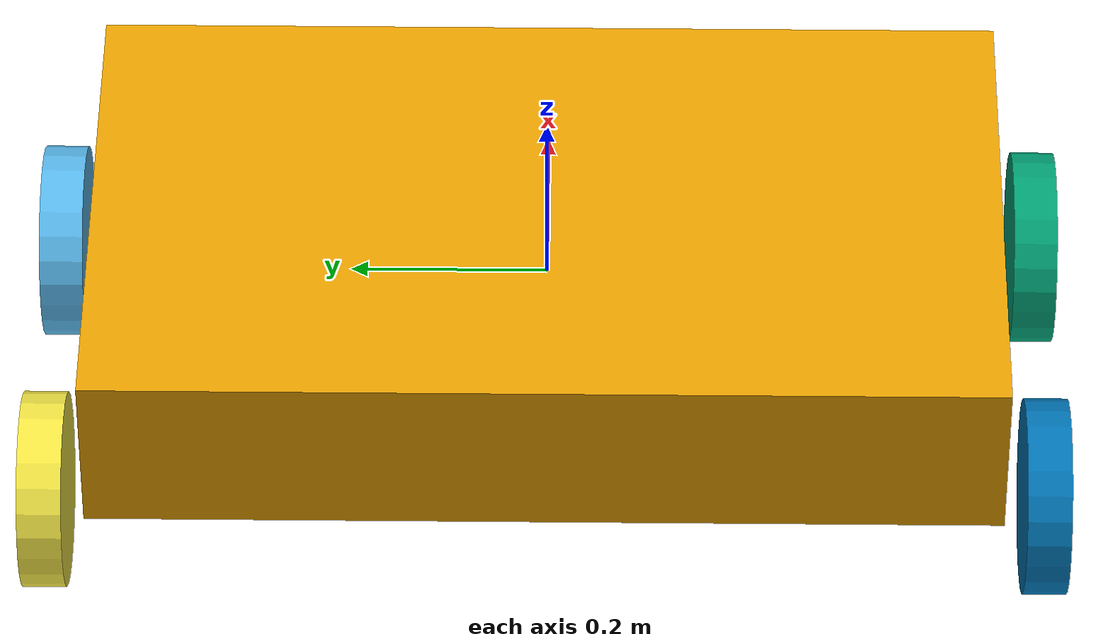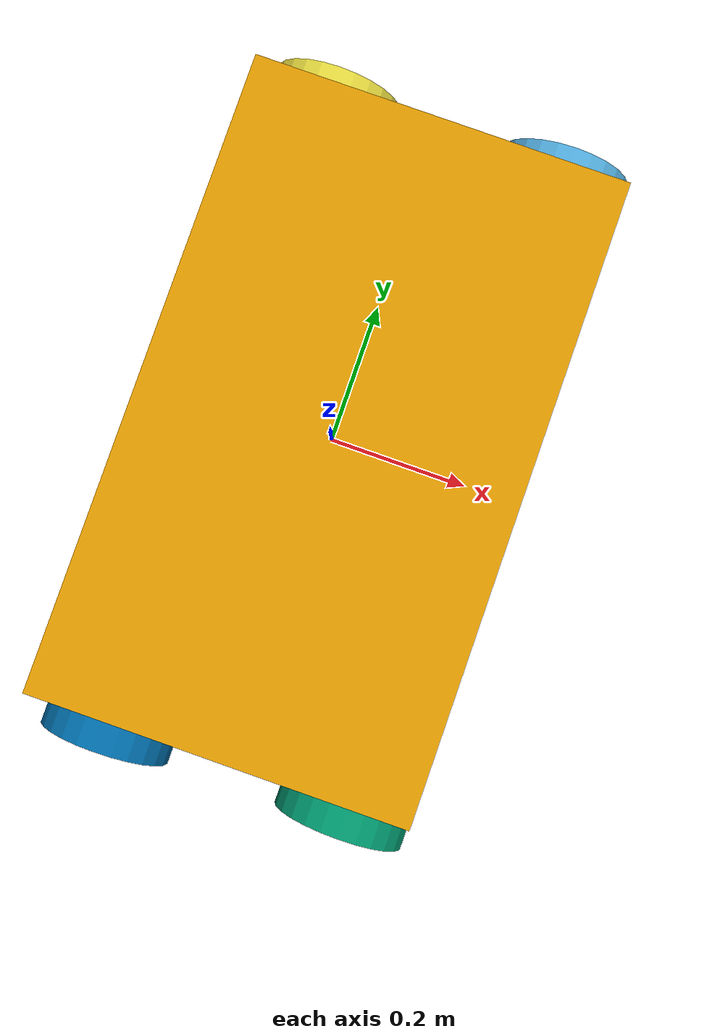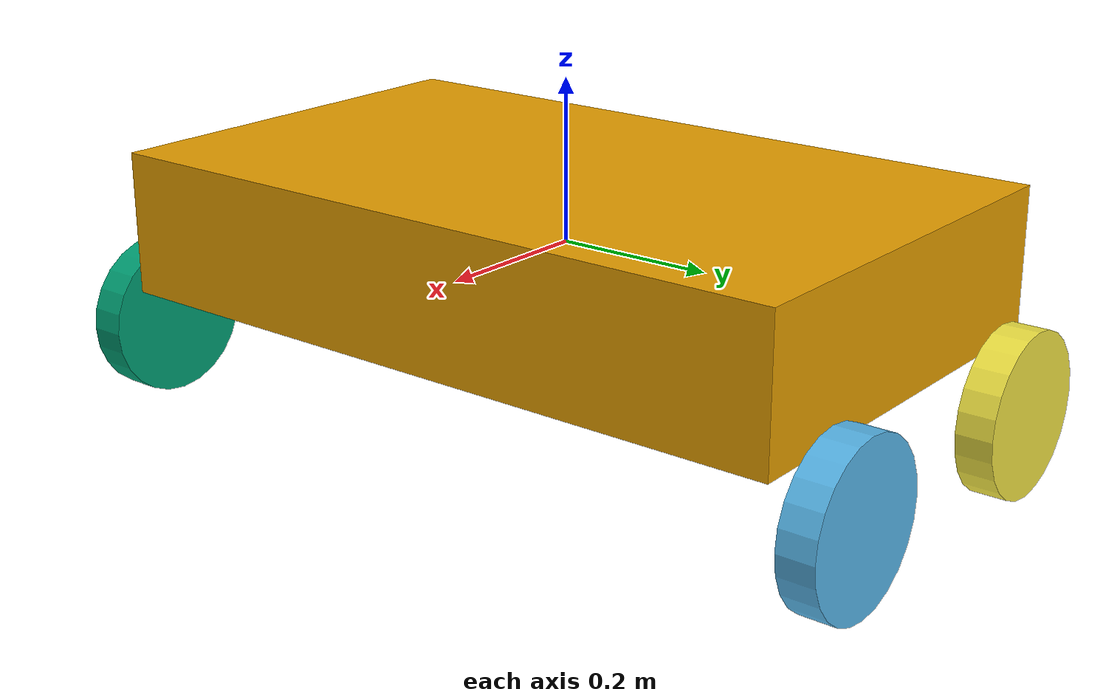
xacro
<?xml version="1.0"?>
<robot xmlns:xacro="http://www.ros.org/wiki/xacro" name="my_robot">

    <xacro:property name="body_length" value="0.546" />
    <xacro:property name="body_width" value="0.926" />
    <xacro:property name="body_height" value="0.180" />
    <xacro:property name="wheel_width" value="0.045" />
    <xacro:property name="wheel_radius" value="0.100" />
    <xacro:property name="wheel_mass" value="2"/>
    <xacro:property name="body_mass" value="10"/>

    <!--DEFINITION DE MACRO-->
    <xacro:macro name="create_wheel" params="position">

        <link name="${position}_wheel">
                <visual>
                    <xacro:if value="${position=='fl'}">
                        <origin xyz="0.0 ${wheel_width/2} 0.0" rpy="${pi/2} 0.0 0.0" />
                    </xacro:if>

                    <xacro:if value="${position=='fr'}">
                        <origin xyz="0.0 ${-wheel_width/2} 0.0" rpy="${pi/2} 0.0 0.0" />
                    </xacro:if>

                    <xacro:if value="${position=='rl'}">
                        <origin xyz="0.0 ${wheel_width/2} 0.0" rpy="${pi/2} 0.0 0.0" />
                    </xacro:if>

                    <xacro:if value="${position=='rr'}">
                        <origin xyz="0.0 ${-wheel_width/2} 0.0" rpy="${pi/2} 0.0 0.0" />
                    </xacro:if>

                    <geometry>
                        <cylinder radius="${wheel_radius}" length="${wheel_width}"/>
                    </geometry>
                </visual>

		<collision>
                    <xacro:if value="${position=='fl'}">
                        <origin xyz="0.0 ${wheel_width/2} 0.0" rpy="${pi/2} 0.0 0.0" />
                    </xacro:if>

                    <xacro:if value="${position=='fr'}">
                        <origin xyz="0.0 ${-wheel_width/2} 0.0" rpy="${pi/2} 0.0 0.0" />
                    </xacro:if>

                    <xacro:if value="${position=='rl'}">
                        <origin xyz="0.0 ${wheel_width/2} 0.0" rpy="${pi/2} 0.0 0.0" />
                    </xacro:if>

                    <xacro:if value="${position=='rr'}">
                        <origin xyz="0.0 ${-wheel_width/2} 0.0" rpy="${pi/2} 0.0 0.0" />
                    </xacro:if>

                    <geometry>
                        <cylinder radius="${wheel_radius}" length="${wheel_width}"/>
	            </geometry>
		</collision>

            <xacro:cylinder_inertial mass="${wheel_mass}" r="${wheel_radius}" h="${wheel_width}"/>
            </link>

            <joint name="${position}_wheel_joint" type="continuous">
                <xacro:if value="${position=='fl'}">
                    <origin xyz="${0.1965} ${0.510-wheel_width/2} ${-body_height/2-0.057}" />
                </xacro:if>

                <xacro:if value="${position=='fr'}">
                    <origin xyz="${0.1965} ${-0.510+wheel_width/2} ${-body_height/2-0.057}" />
                </xacro:if>

                <xacro:if value="${position=='rl'}">
                    <origin xyz="${-0.175} ${0.510-wheel_width/2} ${-body_height/2-0.057}" />
                </xacro:if>

                <xacro:if value="${position=='rr'}">
                    <origin xyz="${-0.175} ${-0.510+wheel_width/2} ${-body_height/2-0.057}" />
                </xacro:if>

                <!--origin xyz="0.4 ${body_width/2} 0.0"-->
                <!--xacro:set_bl_as_parent_link-->
                <parent link="base_link"/>
                <child link="${position}_wheel"/>
                <axis xyz="0.0 1.0 0.0" />
            </joint>
    </xacro:macro>

        <!-- MACROS -->
    <xacro:macro name="box_inertial" params="mass l w h">
        <inertial>
                <mass value="${mass}" />
                <inertia ixx="${mass/3*(w*w + h*h)}" ixy="${mass/4*l*w}" ixz="${mass/4*l*h}"
                     iyy="${mass/3*(l*l + h*h)}" iyz="${mass/4*w*h}"
                     izz="${mass/3*(l*l + w*w)}" />
        </inertial>
    </xacro:macro>
    <xacro:macro name="cylinder_inertial" params="mass r h">
        <inertial>
                <mass value="${mass}" />
                <inertia ixx="${mass/12*(3*r*r + h*h)}" ixy="0.0" ixz="0.0"
                     iyy="${mass/12*(3*r*r + h*h)}" iyz="0.0"
                     izz="${mass/2*(r*r)}" />
        </inertial>
    </xacro:macro>
    <xacro:macro name="spherus_inertial" params="mass r">
        <inertial>
                <mass value="${mass}" />
                <inertia ixx="${mass/5*2*(r*r)}" ixy="0.0" ixz="0.0"
                     iyy="${mass/5*2*(r*r)}" iyz="0.0"
                     izz="${mass/5*2*(r*r)}" />
        </inertial>
    </xacro:macro>

    <!--SECTION PRINCIPALE-->
    <link name="base_link">
        <visual>
            <geometry>
                <box size="${body_length} ${body_width} ${body_height}" />
            </geometry>
        </visual>
    <xacro:box_inertial mass="${body_mass}" l="${body_length}" w="${body_width}" h="${body_height}"/>
    </link>
    <xacro:create_wheel position="fl"/>
    <xacro:create_wheel position="fr"/>
    <xacro:create_wheel position="rl"/>
    <xacro:create_wheel position="rr"/>

</robot>
